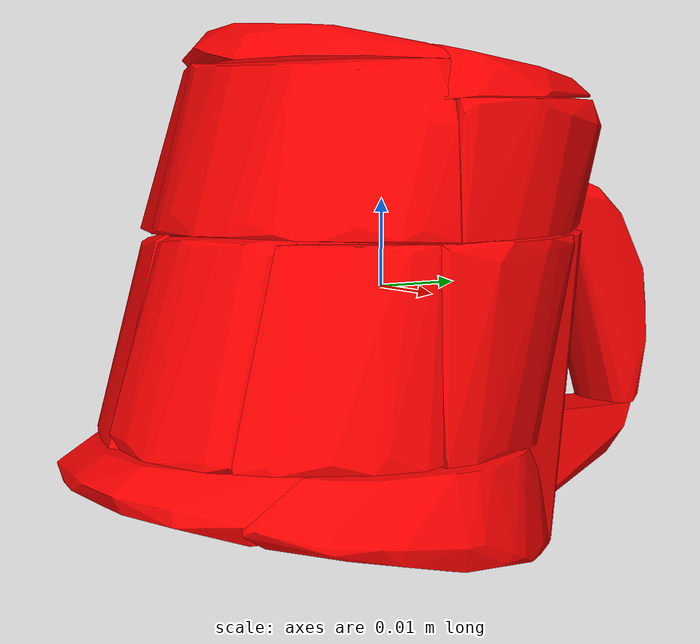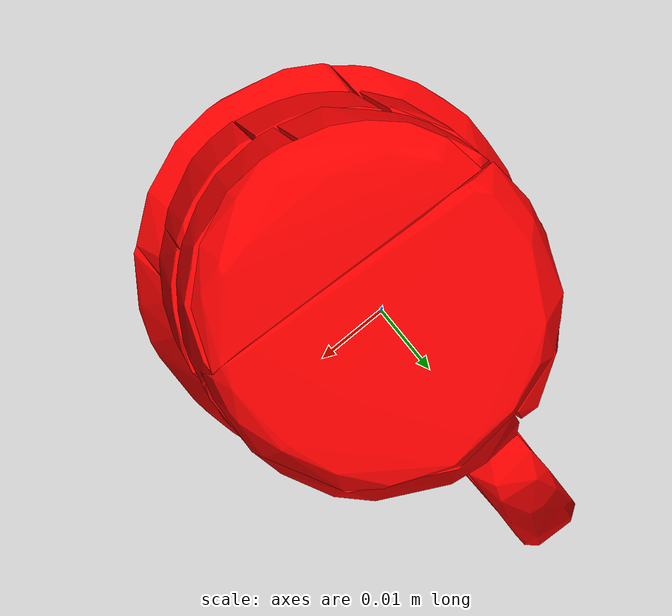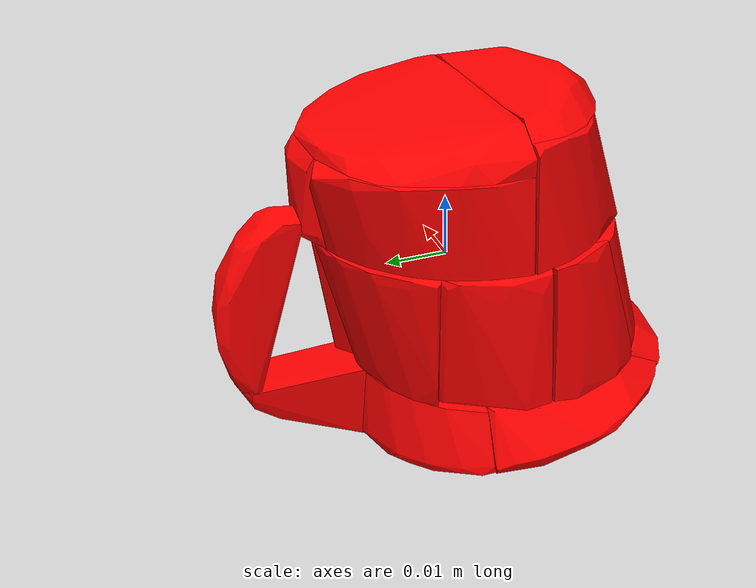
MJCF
<mujoco model="RedCup">
  <asset>
    <mesh file="meshes/RedCup/RedCup_0.stl" name="RedCup_0" scale="1.5 1.5 1.3"/>
    <mesh file="meshes/RedCup/RedCup_1.stl" name="RedCup_1" scale="1.5 1.5 1.3"/>
    <mesh file="meshes/RedCup/RedCup_2.stl" name="RedCup_2" scale="1.5 1.5 1.3"/>
    <mesh file="meshes/RedCup/RedCup_3.stl" name="RedCup_3" scale="1.5 1.5 1.3"/>
    <mesh file="meshes/RedCup/RedCup_4.stl" name="RedCup_4" scale="1.5 1.5 1.3"/>
    <mesh file="meshes/RedCup/RedCup_5.stl" name="RedCup_5" scale="1.5 1.5 1.3"/>
    <mesh file="meshes/RedCup/RedCup_6.stl" name="RedCup_6" scale="1.5 1.5 1.3"/>
    <mesh file="meshes/RedCup/RedCup_7.stl" name="RedCup_7" scale="1.5 1.5 1.3"/>
    <mesh file="meshes/RedCup/RedCup_8.stl" name="RedCup_8" scale="1.5 1.5 1.3"/>
    <mesh file="meshes/RedCup/RedCup_9.stl" name="RedCup_9" scale="1.5 1.5 1.3"/>
    <mesh file="meshes/RedCup/RedCup_10.stl" name="RedCup_10" scale="1.5 1.5 1.3"/>
    <mesh file="meshes/RedCup/RedCup_11.stl" name="RedCup_11" scale="1.5 1.5 1.3"/>
    <mesh file="meshes/RedCup/RedCup_12.stl" name="RedCup_12" scale="1.5 1.5 1.3"/>
    <mesh file="meshes/RedCup/RedCup_13.stl" name="RedCup_13" scale="1.5 1.5 1.3"/>
    <mesh file="meshes/RedCup/RedCup_14.stl" name="RedCup_14" scale="1.5 1.5 1.3"/>
    <mesh file="meshes/RedCup/RedCup_15.stl" name="RedCup_15" scale="1.5 1.5 1.3"/>
    <mesh file="meshes/RedCup/RedCup_16.stl" name="RedCup_16" scale="1.5 1.5 1.3"/>
    <mesh file="meshes/RedCup/RedCup_17.stl" name="RedCup_17" scale="1.5 1.5 1.3"/>
    <mesh file="meshes/RedCup/RedCup_18.stl" name="RedCup_18" scale="1.5 1.5 1.3"/>
    <mesh file="meshes/RedCup/RedCup_19.stl" name="RedCup_19" scale="1.5 1.5 1.3"/>
  </asset>
  <worldbody>
    <body>
      <body name="collision">
        <geom condim="4" density="100" friction="1.8 0.3 0.1" group="1" mesh="RedCup_0" pos="0 0 0" rgba="1 0 0 1" solimp="0.998 0.998 0.001" solref="0.002 1" type="mesh"/>
        <geom condim="4" density="100" friction="1.8 0.3 0.1" group="1" mesh="RedCup_1" pos="0 0 0" rgba="1 0 0 1" solimp="0.998 0.998 0.001" solref="0.002 1" type="mesh"/>
        <geom condim="4" density="100" friction="1.8 0.3 0.1" group="1" mesh="RedCup_2" pos="0 0 0" rgba="1 0 0 1" solimp="0.998 0.998 0.001" solref="0.002 1" type="mesh"/>
        <geom condim="4" density="100" friction="1.8 0.3 0.1" group="1" mesh="RedCup_3" pos="0 0 0" rgba="1 0 0 1" solimp="0.998 0.998 0.001" solref="0.002 1" type="mesh"/>
        <geom condim="4" density="100" friction="1.8 0.3 0.1" group="1" mesh="RedCup_4" pos="0 0 0" rgba="1 0 0 1" solimp="0.998 0.998 0.001" solref="0.002 1" type="mesh"/>
        <geom condim="4" density="100" friction="1.8 0.3 0.1" group="1" mesh="RedCup_5" pos="0 0 0" rgba="1 0 0 1" solimp="0.998 0.998 0.001" solref="0.002 1" type="mesh"/>
        <geom condim="4" density="100" friction="1.8 0.3 0.1" group="1" mesh="RedCup_6" pos="0 0 0" rgba="1 0 0 1" solimp="0.998 0.998 0.001" solref="0.002 1" type="mesh"/>
        <geom condim="4" density="100" friction="1.8 0.3 0.1" group="1" mesh="RedCup_7" pos="0 0 0" rgba="1 0 0 1" solimp="0.998 0.998 0.001" solref="0.002 1" type="mesh"/>
        <geom condim="4" density="100" friction="1.8 0.3 0.1" group="1" mesh="RedCup_8" pos="0 0 0" rgba="1 0 0 1" solimp="0.998 0.998 0.001" solref="0.002 1" type="mesh"/>
        <geom condim="4" density="100" friction="1.8 0.3 0.1" group="1" mesh="RedCup_9" pos="0 0 0" rgba="1 0 0 1" solimp="0.998 0.998 0.001" solref="0.002 1" type="mesh"/>
        <geom condim="4" density="100" friction="1.8 0.3 0.1" group="1" mesh="RedCup_10" pos="0 0 0" rgba="1 0 0 1" solimp="0.998 0.998 0.001" solref="0.002 1" type="mesh"/>
        <geom condim="4" density="100" friction="1.8 0.3 0.1" group="1" mesh="RedCup_11" pos="0 0 0" rgba="1 0 0 1" solimp="0.998 0.998 0.001" solref="0.002 1" type="mesh"/>
        <geom condim="4" density="100" friction="1.8 0.3 0.1" group="1" mesh="RedCup_12" pos="0 0 0" rgba="1 0 0 1" solimp="0.998 0.998 0.001" solref="0.002 1" type="mesh"/>
        <geom condim="4" density="100" friction="1.8 0.3 0.1" group="1" mesh="RedCup_13" pos="0 0 0" rgba="1 0 0 1" solimp="0.998 0.998 0.001" solref="0.002 1" type="mesh"/>
        <geom condim="4" density="100" friction="1.8 0.3 0.1" group="1" mesh="RedCup_14" pos="0 0 0" rgba="1 0 0 1" solimp="0.998 0.998 0.001" solref="0.002 1" type="mesh"/>
        <geom condim="4" density="100" friction="1.8 0.3 0.1" group="1" mesh="RedCup_15" pos="0 0 0" rgba="1 0 0 1" solimp="0.998 0.998 0.001" solref="0.002 1" type="mesh"/>
        <geom condim="4" density="100" friction="1.8 0.3 0.1" group="1" mesh="RedCup_16" pos="0 0 0" rgba="1 0 0 1" solimp="0.998 0.998 0.001" solref="0.002 1" type="mesh"/>
        <geom condim="4" density="100" friction="1.8 0.3 0.1" group="1" mesh="RedCup_17" pos="0 0 0" rgba="1 0 0 1" solimp="0.998 0.998 0.001" solref="0.002 1" type="mesh"/>
        <geom condim="4" density="100" friction="1.8 0.3 0.1" group="1" mesh="RedCup_18" pos="0 0 0" rgba="1 0 0 1" solimp="0.998 0.998 0.001" solref="0.002 1" type="mesh"/>
        <geom condim="4" density="100" friction="1.8 0.3 0.1" group="1" mesh="RedCup_19" pos="0 0 0" rgba="1 0 0 1" solimp="0.998 0.998 0.001" solref="0.002 1" type="mesh"/>
      </body>
      <body name="visual">
        <geom conaffinity="0" contype="0" group="0" mass="0.0001" mesh="RedCup_0" pos="0 0 0" rgba="1 0 0 1" type="mesh"/>
        <geom conaffinity="0" contype="0" group="0" mass="0.0001" mesh="RedCup_1" pos="0 0 0" rgba="1 0 0 1" type="mesh"/>
        <geom conaffinity="0" contype="0" group="0" mass="0.0001" mesh="RedCup_2" pos="0 0 0" rgba="1 0 0 1" type="mesh"/>
        <geom conaffinity="0" contype="0" group="0" mass="0.0001" mesh="RedCup_3" pos="0 0 0" rgba="1 0 0 1" type="mesh"/>
        <geom conaffinity="0" contype="0" group="0" mass="0.0001" mesh="RedCup_4" pos="0 0 0" rgba="1 0 0 1" type="mesh"/>
        <geom conaffinity="0" contype="0" group="0" mass="0.0001" mesh="RedCup_5" pos="0 0 0" rgba="1 0 0 1" type="mesh"/>
        <geom conaffinity="0" contype="0" group="0" mass="0.0001" mesh="RedCup_6" pos="0 0 0" rgba="1 0 0 1" type="mesh"/>
        <geom conaffinity="0" contype="0" group="0" mass="0.0001" mesh="RedCup_7" pos="0 0 0" rgba="1 0 0 1" type="mesh"/>
        <geom conaffinity="0" contype="0" group="0" mass="0.0001" mesh="RedCup_8" pos="0 0 0" rgba="1 0 0 1" type="mesh"/>
        <geom conaffinity="0" contype="0" group="0" mass="0.0001" mesh="RedCup_9" pos="0 0 0" rgba="1 0 0 1" type="mesh"/>
        <geom conaffinity="0" contype="0" group="0" mass="0.0001" mesh="RedCup_10" pos="0 0 0" rgba="1 0 0 1" type="mesh"/>
        <geom conaffinity="0" contype="0" group="0" mass="0.0001" mesh="RedCup_11" pos="0 0 0" rgba="1 0 0 1" type="mesh"/>
        <geom conaffinity="0" contype="0" group="0" mass="0.0001" mesh="RedCup_12" pos="0 0 0" rgba="1 0 0 1" type="mesh"/>
        <geom conaffinity="0" contype="0" group="0" mass="0.0001" mesh="RedCup_13" pos="0 0 0" rgba="1 0 0 1" type="mesh"/>
        <geom conaffinity="0" contype="0" group="0" mass="0.0001" mesh="RedCup_14" pos="0 0 0" rgba="1 0 0 1" type="mesh"/>
        <geom conaffinity="0" contype="0" group="0" mass="0.0001" mesh="RedCup_15" pos="0 0 0" rgba="1 0 0 1" type="mesh"/>
        <geom conaffinity="0" contype="0" group="0" mass="0.0001" mesh="RedCup_16" pos="0 0 0" rgba="1 0 0 1" type="mesh"/>
        <geom conaffinity="0" contype="0" group="0" mass="0.0001" mesh="RedCup_17" pos="0 0 0" rgba="1 0 0 1" type="mesh"/>
        <geom conaffinity="0" contype="0" group="0" mass="0.0001" mesh="RedCup_18" pos="0 0 0" rgba="1 0 0 1" type="mesh"/>
        <geom conaffinity="0" contype="0" group="0" mass="0.0001" mesh="RedCup_19" pos="0 0 0" rgba="1 0 0 1" type="mesh"/>
      </body>
      <site name="bottom_site" pos="0 0 -0.06" rgba="0 0 0 0" size="0.005"/>
      <site name="top_site" pos="0 0 0.04" rgba="0 0 0 0" size="0.005"/>
      <site name="horizontal_radius_site" pos="0.025 0.025 0" rgba="0 0 0 0" size="0.005"/>
    </body>
  </worldbody>
</mujoco>
